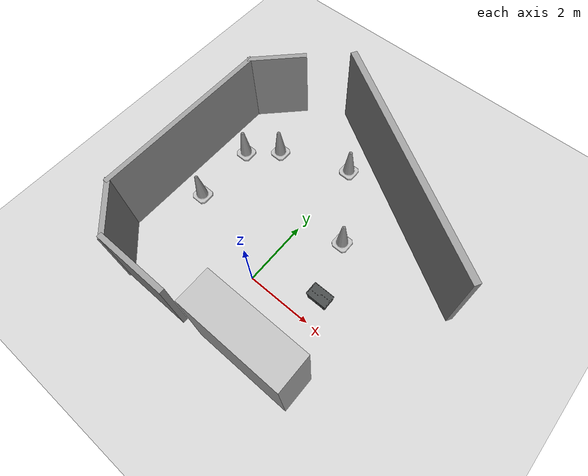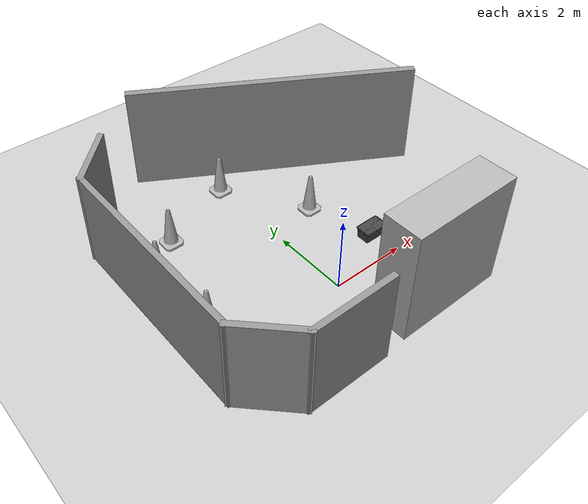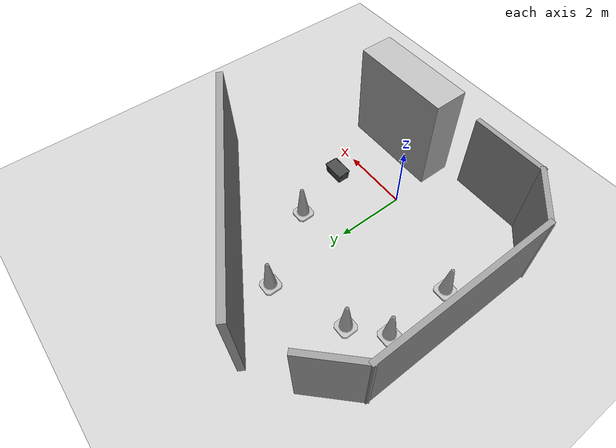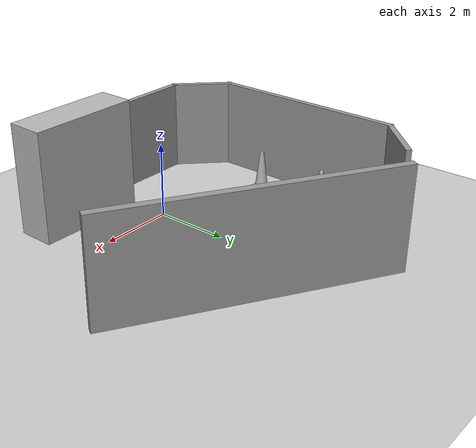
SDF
<sdf version="1.7">
 <world name="default">
  <light name="sun" type="directional">
   <pose>0 0 10 0 -0 0</pose>
   <diffuse>0.8 0.8 0.8 1</diffuse>
   <specular>0.2 0.2 0.2 1</specular>
   <attenuation>
    <range>1000</range>
    <constant>0.9</constant>
    <linear>0.01</linear>
    <quadratic>0.001</quadratic>
   </attenuation>
   <direction>-0.5 0.1 -0.9</direction>
   <spot><inner_angle>0</inner_angle><outer_angle>0</outer_angle><falloff>0</falloff></spot>
  </light>
  <model name="ground_plane">
   <static>1</static>
   <link name="link">
    <collision name="collision">
     <geometry><plane><normal>0 0 1</normal><size>100 100</size></plane></geometry>
     <surface><friction><ode><mu>100</mu><mu2>50</mu2></ode></friction></surface>
    </collision>
    <visual name="visual">
     <cast_shadows>0</cast_shadows>
     <geometry><plane><normal>0 0 1</normal><size>100 100</size></plane></geometry>
     <material>
      <script><uri>file://media/materials/scripts/gazebo.material</uri><name>Gazebo/Grey</name></script>
     </material>
    </visual>
   </link>
  </model>
  <gravity>0 0 -9.8</gravity>
  <magnetic_field>6e-06 2.3e-05 -4.2e-05</magnetic_field>
  <atmosphere type="adiabatic"/>
  <physics type="ode">
   <max_step_size>0.001</max_step_size>
   <real_time_factor>1</real_time_factor>
   <real_time_update_rate>1000</real_time_update_rate>
  </physics>
  <scene><ambient>0.4 0.4 0.4 1</ambient><background>0.7 0.7 0.7 1</background><shadows>1</shadows></scene>
  <audio><device>default</device></audio>
  <spherical_coordinates>
   <surface_model>EARTH_WGS84</surface_model>
   <latitude_deg>0</latitude_deg>
   <longitude_deg>0</longitude_deg>
   <elevation>0</elevation>
   <heading_deg>0</heading_deg>
  </spherical_coordinates>
  <model name="brick_box_3x1x3">
   <static>1</static>
   <link name="chassis">
    <pose>0 0 1.5 0 -0 0</pose>
    <collision name="collision"><geometry><box><size>3 1 3</size></box></geometry></collision>
    <visual name="visual">
     <geometry><mesh><uri>model://brick_box_3x1x3/meshes/simple_box.dae</uri><scale>3 1 3</scale></mesh></geometry>
     <material>
      <script>
       <uri>model://brick_box_3x1x3/materials/scripts</uri>
       <uri>model://brick_box_3x1x3/materials/textures</uri>
       <name>BrickBox/Diffuse</name>
      </script>
     </material>
    </visual>
   </link>
   <pose>1.53777 -1.5471 0 0 -0 0</pose>
  </model>
  <model name="grey_wall">
   <static>1</static>
   <link name="link">
    <pose>0 0 1.4 0 -0 0</pose>
    <collision name="collision"><geometry><box><size>7.5 0.2 2.8</size></box></geometry></collision>
    <visual name="visual">
     <cast_shadows>0</cast_shadows>
     <geometry><box><size>7.5 0.2 2.8</size></box></geometry>
     <material>
      <script>
       <uri>model://grey_wall/materials/scripts</uri>
       <uri>model://grey_wall/materials/textures</uri>
       <name>vrc/grey_wall</name>
      </script>
     </material>
    </visual>
   </link>
   <pose>1.69456 4.44031 5e-06 -0.008905 -0.005253 -0.532901</pose>
  </model>
  <model name="Construction Cone">
   <link name="link">
    <collision name="collision">
     <geometry>
      <mesh><scale>10 10 10</scale><uri>model://construction_cone/meshes/construction_cone.dae</uri></mesh>
     </geometry>
    </collision>
    <visual name="visual">
     <geometry>
      <mesh><scale>10 10 10</scale><uri>model://construction_cone/meshes/construction_cone.dae</uri></mesh>
     </geometry>
    </visual>
    <inertial>
     <inertia><ixx>1</ixx><ixy>0</ixy><ixz>0</ixz><iyy>1</iyy><iyz>0</iyz><izz>1</izz></inertia>
     <mass>1</mass>
    </inertial>
   </link>
   <pose>-2.19901 3.68904 -0 0 -1e-06 0</pose>
  </model>
  <model name="Construction Cone_clone">
   <link name="link">
    <collision name="collision">
     <geometry>
      <mesh><scale>10 10 10</scale><uri>model://construction_cone/meshes/construction_cone.dae</uri></mesh>
     </geometry>
    </collision>
    <visual name="visual">
     <geometry>
      <mesh><scale>10 10 10</scale><uri>model://construction_cone/meshes/construction_cone.dae</uri></mesh>
     </geometry>
    </visual>
    <inertial>
     <inertia><ixx>1</ixx><ixy>0</ixy><ixz>0</ixz><iyy>1</iyy><iyz>0</iyz><izz>1</izz></inertia>
     <mass>1</mass>
    </inertial>
   </link>
   <pose>-3 1 -0 0 -0 0</pose>
  </model>
  <model name="Construction Cone_clone_0">
   <link name="link">
    <collision name="collision">
     <geometry>
      <mesh><scale>10 10 10</scale><uri>model://construction_cone/meshes/construction_cone.dae</uri></mesh>
     </geometry>
    </collision>
    <visual name="visual">
     <geometry>
      <mesh><scale>10 10 10</scale><uri>model://construction_cone/meshes/construction_cone.dae</uri></mesh>
     </geometry>
    </visual>
    <inertial>
     <inertia><ixx>1</ixx><ixy>0</ixy><ixz>0</ixz><iyy>1</iyy><iyz>0</iyz><izz>1</izz></inertia>
     <mass>1</mass>
    </inertial>
   </link>
   <pose>-3.03021 2.9773 -0 0 -0 0</pose>
  </model>
  <model name="Construction Cone_clone_1">
   <link name="link">
    <collision name="collision">
     <geometry>
      <mesh><scale>10 10 10</scale><uri>model://construction_cone/meshes/construction_cone.dae</uri></mesh>
     </geometry>
    </collision>
    <visual name="visual">
     <geometry>
      <mesh><scale>10 10 10</scale><uri>model://construction_cone/meshes/construction_cone.dae</uri></mesh>
     </geometry>
    </visual>
    <inertial>
     <inertia><ixx>1</ixx><ixy>0</ixy><ixz>0</ixz><iyy>1</iyy><iyz>0</iyz><izz>1</izz></inertia>
     <mass>1</mass>
    </inertial>
   </link>
   <pose>1.28384 2.46273 -0 0 -1e-06 0</pose>
  </model>
  <model name="Construction Cone_clone_2">
   <link name="link">
    <collision name="collision">
     <geometry>
      <mesh><scale>10 10 10</scale><uri>model://construction_cone/meshes/construction_cone.dae</uri></mesh>
     </geometry>
    </collision>
    <visual name="visual">
     <geometry>
      <mesh><scale>10 10 10</scale><uri>model://construction_cone/meshes/construction_cone.dae</uri></mesh>
     </geometry>
    </visual>
    <inertial>
     <inertia><ixx>1</ixx><ixy>0</ixy><ixz>0</ixz><iyy>1</iyy><iyz>0</iyz><izz>1</izz></inertia>
     <mass>1</mass>
    </inertial>
   </link>
   <pose>-0.075341 4.51901 -0 0 -0 0</pose>
  </model>
  <model name="grey_tote">
   <link name="link">
    <inertial>
     <pose>0 0 0.14155 0 -0 0</pose>
     <mass>3.53802</mass>
     <inertia>
      <ixx>0.0688358</ixx>
      <ixy>0</ixy>
      <ixz>0</ixz>
      <iyy>0.139596</iyy>
      <iyz>0</iyz>
      <izz>0.155909</izz>
     </inertia>
    </inertial>
    <collision name="lid">
     <pose>0 0 0.28958 0 -0 0</pose>
     <geometry><box><size>0.67768 0.41298 0.01588</size></box></geometry>
    </collision>
    <collision name="lid_lip_1">
     <pose>0 0.20063 0.3048 0 -0 0</pose>
     <geometry><box><size>0.65068 0.0105 0.0127</size></box></geometry>
    </collision>
    <collision name="lid_lip_2">
     <pose>0 -0.20063 0.3048 0 -0 0</pose>
     <geometry><box><size>0.65068 0.0105 0.0127</size></box></geometry>
    </collision>
    <collision name="lid_lip_3">
     <pose>0.32585 0 0.3048 0 -0 0</pose>
     <geometry><box><size>0.02602 0.31202 0.0127</size></box></geometry>
    </collision>
    <collision name="lid_lip_4">
     <pose>-0.32585 0 0.3048 0 -0 0</pose>
     <geometry><box><size>0.02602 0.31202 0.0127</size></box></geometry>
    </collision>
    <collision name="side_wall_1">
     <pose>0 -0.18 0.14155 0.061147 -0 0</pose>
     <geometry><box><size>0.58404 0.02602 0.283099</size></box></geometry>
    </collision>
    <collision name="side_wall_2">
     <pose>0 0.18 0.14155 -0.061147 0 0</pose>
     <geometry><box><size>0.58404 0.02602 0.283099</size></box></geometry>
    </collision>
    <collision name="side_wall_3">
     <pose>0.305 0 0.14155 0 0.061147 0</pose>
     <geometry><box><size>0.02602 0.33046 0.283099</size></box></geometry>
    </collision>
    <collision name="side_wall_4">
     <pose>-0.305 0 0.14155 0 -0.061147 0</pose>
     <geometry><box><size>0.02602 0.33046 0.283099</size></box></geometry>
    </collision>
    <collision name="bottom">
     <pose>0 0 0.01 0 -0 0</pose>
     <geometry><box><size>0.58404 0.33046 0.02</size></box></geometry>
    </collision>
    <collision name="corner_1">
     <pose>0.30202 -0.175 0.14155 0.061147 0.061147 -0</pose>
     <geometry><cylinder><radius>0.01268</radius><length>0.283099</length></cylinder></geometry>
    </collision>
    <collision name="corner_2">
     <pose>-0.30202 -0.175 0.14155 0.061147 -0.061147 0</pose>
     <geometry><cylinder><radius>0.01268</radius><length>0.283099</length></cylinder></geometry>
    </collision>
    <collision name="corner_3">
     <pose>-0.30202 0.175 0.14155 -0.061147 -0.061147 -0</pose>
     <geometry><cylinder><radius>0.01268</radius><length>0.283099</length></cylinder></geometry>
    </collision>
    <collision name="corner_4">
     <pose>0.30202 0.175 0.14155 -0.061147 0.061147 0</pose>
     <geometry><cylinder><radius>0.01268</radius><length>0.283099</length></cylinder></geometry>
    </collision>
    <visual name="visual"><geometry><mesh><uri>model://grey_tote/meshes/tote.dae</uri></mesh></geometry></visual>
   </link>
   <pose>1.84543 0.761743 0.000566 0 -0 0</pose>
  </model>
  <model name="1st_wall_gazebo">
   <pose>-1.98872 1.75637 0 0 -0 0</pose>
   <link name="Wall_0">
    <collision name="Wall_0_Collision">
     <geometry><box><size>2.25 0.15 2.5</size></box></geometry>
     <pose>0 0 1.25 0 -0 0</pose>
    </collision>
    <visual name="Wall_0_Visual">
     <pose>0 0 1.25 0 -0 0</pose>
     <geometry><box><size>2.25 0.15 2.5</size></box></geometry>
     <material>
      <script><uri>file://media/materials/scripts/gazebo.material</uri><name>Gazebo/Grey</name></script>
      <ambient>1 1 1 1</ambient>
     </material>
     <meta><layer>0</layer></meta>
    </visual>
    <pose>0.298719 -3.80637 0 0 -0 3.14159</pose>
   </link>
   <link name="Wall_1">
    <collision name="Wall_1_Collision">
     <geometry><box><size>1.75 0.15 2.5</size></box></geometry>
     <pose>0 0 1.25 0 -0 0</pose>
    </collision>
    <visual name="Wall_1_Visual">
     <pose>0 0 1.25 0 -0 0</pose>
     <geometry><box><size>1.75 0.15 2.5</size></box></geometry>
     <material>
      <script><uri>file://media/materials/scripts/gazebo.material</uri><name>Gazebo/Grey</name></script>
      <ambient>1 1 1 1</ambient>
     </material>
     <meta><layer>0</layer></meta>
    </visual>
    <pose>-1.31697 -3.24069 0 0 -0 2.35619</pose>
   </link>
   <link name="Wall_2">
    <collision name="Wall_2_Collision">
     <geometry><box><size>5.5 0.15 2.5</size></box></geometry>
     <pose>0 0 1.25 0 -0 0</pose>
    </collision>
    <visual name="Wall_2_Visual">
     <pose>0 0 1.25 0 -0 0</pose>
     <geometry><box><size>5.5 0.15 2.5</size></box></geometry>
     <material>
      <script><uri>file://media/materials/scripts/gazebo.material</uri><name>Gazebo/Grey</name></script>
      <ambient>1 1 1 1</ambient>
     </material>
     <meta><layer>0</layer></meta>
    </visual>
    <pose>-1.88265 0 0 0 -0 1.5708</pose>
   </link>
   <link name="Wall_3">
    <collision name="Wall_3_Collision">
     <geometry><box><size>1.75 0.15 2.5</size></box></geometry>
     <pose>0 0 1.25 0 -0 0</pose>
    </collision>
    <visual name="Wall_3_Visual">
     <pose>0 0 1.25 0 -0 0</pose>
     <geometry><box><size>1.75 0.15 2.5</size></box></geometry>
     <material>
      <script><uri>file://media/materials/scripts/gazebo.material</uri><name>Gazebo/Grey</name></script>
      <ambient>1 1 1 1</ambient>
     </material>
     <meta><layer>0</layer></meta>
    </visual>
    <pose>-1.31697 3.24069 0 0 -0 0.785398</pose>
   </link>
   <static>1</static>
  </model>
 </world>
</sdf>
